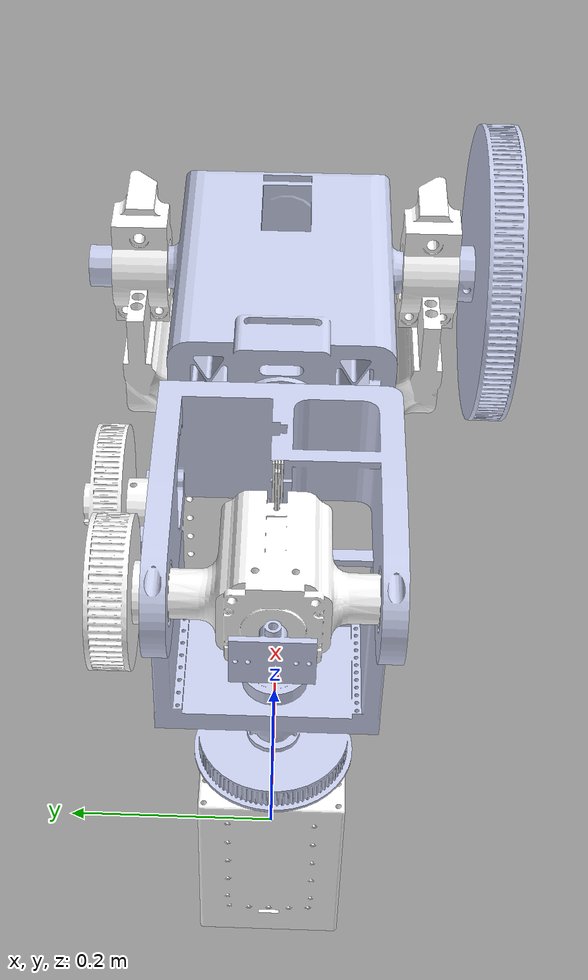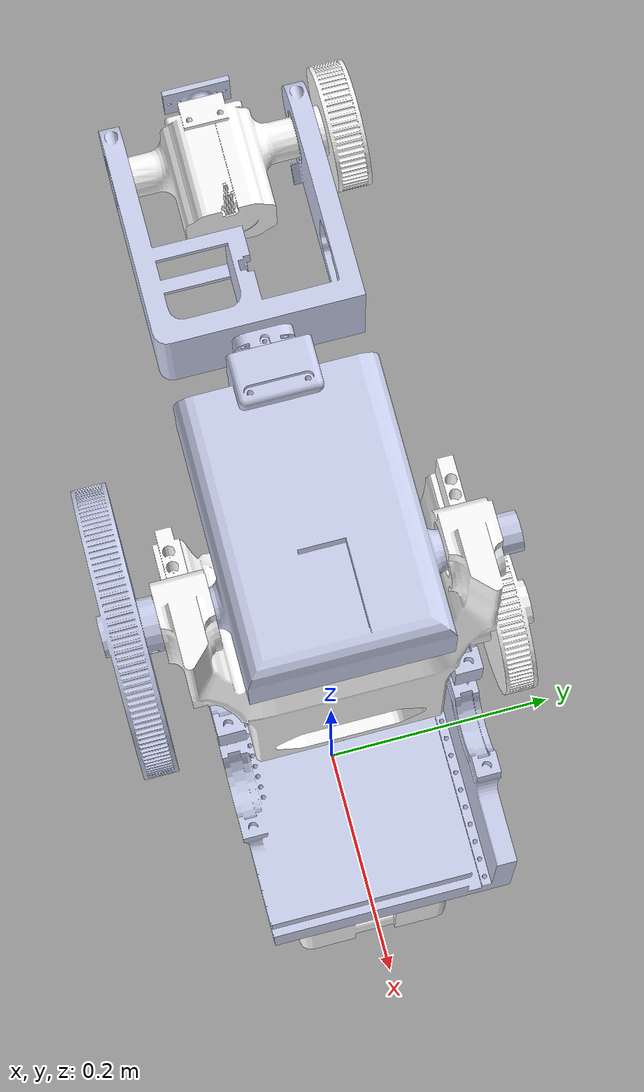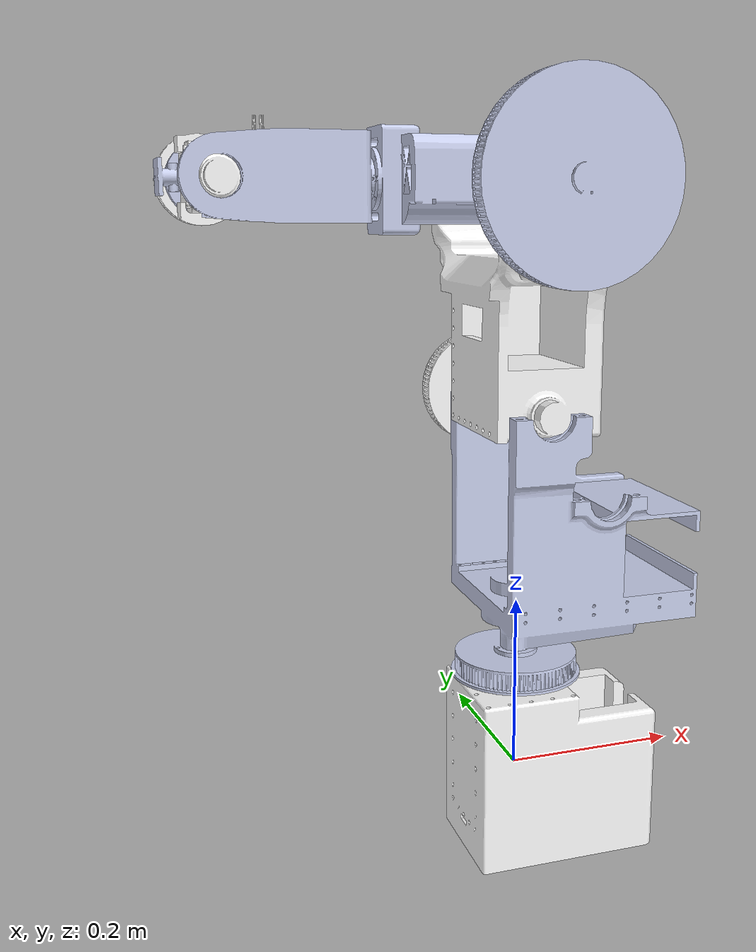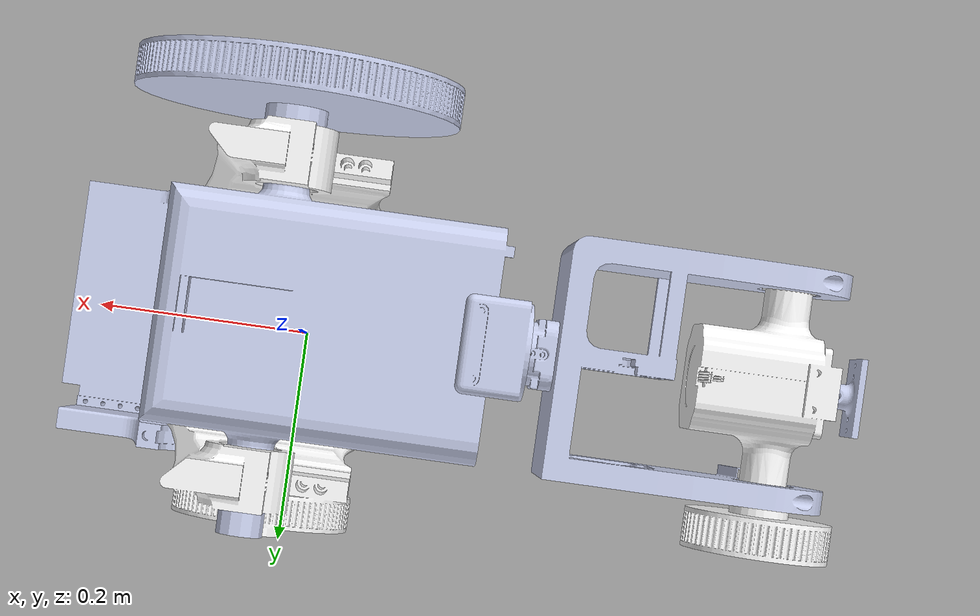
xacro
<?xml version="1.0"?>
<robot xmlns:xacro="http://www.ros.org/wiki/xacro" name="ra6a">
    <xacro:arg name="initial_positions_file" default="initial_positions.yaml" />

    <!-- Import ra6a urdf file -->
    <xacro:include filename="$(find ra6a)/urdf/ra6a.urdf" />

    <!-- Import control_xacro -->
    <xacro:include filename="ra6a.ros2_control.xacro" />

    <xacro:ra6a_ros2_control name="FakeSystem" initial_positions_file="$(arg initial_positions_file)"/>

</robot>

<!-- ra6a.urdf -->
<robot
  name="ra6a">
  <link
    name="base_link">
    <inertial>
      <origin
        xyz="0.039204 -6.6862E-07 -0.010842"
        rpy="0 0 0" />
      <mass
        value="2.915" />
      <inertia
        ixx="0.01436"
        ixy="-9.7839E-06"
        ixz="8.8797E-08"
        iyy="0.016743"
        iyz="-8.9882E-08"
        izz="0.017881" />
    </inertial>
    <visual>
      <origin
        xyz="0 0 0"
        rpy="0 0 0" />
      <geometry>
        <mesh
          filename="package://ra6a/meshes/base_link.stl"
          scale="1.0 1.0 1.0"/>
      </geometry>
      <material
        name="">
        <color
          rgba="1 1 1 1" />
      </material>
    </visual>
    <collision>
      <origin
        xyz="0 0 0"
        rpy="0 0 0" />
      <geometry>
        <mesh
          filename="package://ra6a/meshes/base_link.stl"
          scale="1.0 1.0 1.0"/>
      </geometry>
    </collision>
  </link>
  <link
    name="l1">
    <inertial>
      <origin
        xyz="-0.018341 -0.038699 -0.09919"
        rpy="0 0 0" />
      <mass
        value="2.4989" />
      <inertia
        ixx="0.013037"
        ixy="-0.0027249"
        ixz="0.001464"
        iyy="0.010527"
        iyz="0.0022131"
        izz="0.010986" />
    </inertial>
    <visual>
      <origin
        xyz="0 0 0"
        rpy="0 0 0" />
      <geometry>
        <mesh
          filename="package://ra6a/meshes/l1.stl"
          scale="1.0 1.0 1.0"/>
      </geometry>
      <material
        name="">
        <color
          rgba="0.79216 0.81961 0.93333 1" />
      </material>
    </visual>
    <collision>
      <origin
        xyz="0 0 0"
        rpy="0 0 0" />
      <geometry>
        <mesh
          filename="package://ra6a/meshes/l1.stl"
          scale="1.0 1.0 1.0" />
      </geometry>
    </collision>
  </link>
  <joint
    name="j1"
    type="revolute">
    <origin
      xyz="0 0 0.1369"
      rpy="3.1416 0 4.473940413" />
    <parent
      link="base_link" />
    <child
      link="l1" />
    <axis
      xyz="0 0 1" />
    <limit
      lower="-3.0979"
      upper="3.0979"
      effort="55.5"
      velocity="1.05" />
  </joint>
  <link
    name="l2">
    <inertial>
      <origin
        xyz="-0.023045 -0.0039604 -0.089257"
        rpy="0 0 0" />
      <mass
        value="3.5609" />
      <inertia
        ixx="0.021496"
        ixy="0.00028586"
        ixz="0.00088645"
        iyy="0.031862"
        iyz="0.0004388"
        izz="0.017196" />
    </inertial>
    <visual>
      <origin
        xyz="0 0 0"
        rpy="0 0 0" />
      <geometry>
        <mesh
          filename="package://ra6a/meshes/l2.stl"
          scale="1.0 1.0 1.0"/>
      </geometry>
      <material
        name="">
        <color
          rgba="1 1 1 1" />
      </material>
    </visual>
    <collision>
      <origin
        xyz="0 0 0"
        rpy="0 0 0" />
      <geometry>
        <mesh
          filename="package://ra6a/meshes/l2.stl"
          scale="1.0 1.0 1.0"/>
      </geometry>
    </collision>
  </link>
  <joint
    name="j2"
    type="revolute">
    <origin
      xyz="0 0 -0.2922"
      rpy="0 0 -0.23845" />
    <parent
      link="l1" />
    <child
      link="l2" />
    <axis
      xyz="1 0 0" />
    <limit
      lower="-1.30899694"
      upper="1.69296937"
      effort="110"
      velocity="1.05" />
  </joint>
  <link
    name="l3">
    <inertial>
      <origin
        xyz="-0.049486 -0.00089697 0.024"
        rpy="0 0 0" />
      <mass
        value="3.1038" />
      <inertia
        ixx="0.013328"
        ixy="4.3048E-05"
        ixz="-8.438E-05"
        iyy="0.016047"
        iyz="0.00018895"
        izz="0.0094678" />
    </inertial>
    <visual>
      <origin
        xyz="0 0 0"
        rpy="0 0 0" />
      <geometry>
        <mesh
          filename="package://ra6a/meshes/l3.stl"
          scale="1.0 1.0 1.0"/>
      </geometry>
      <material
        name="">
        <color
          rgba="0.79608 0.82353 0.93725 1" />
      </material>
    </visual>
    <collision>
      <origin
        xyz="0 0 0"
        rpy="0 0 0" />
      <geometry>
        <mesh
          filename="package://ra6a/meshes/l3.stl"
          scale="1.0 1.0 1.0"/>
      </geometry>
    </collision>
  </link>
  <joint
    name="j3"
    type="revolute">
    <origin
      xyz="0 0 -0.23789"
      rpy="1.5708 0 -3.1416" />
    <parent
      link="l2" />
    <child
      link="l3" />
    <axis
      xyz="1 0 0" />
    <limit
      lower="-0.4363323"
      upper="3.577925"
      effort="65"
      velocity="1.05" />
  </joint>
  <link
    name="l4">
    <inertial>
      <origin
        xyz="-0.00644648015582011 0.00019408303741475 0.0542634295034519"
        rpy="0 0 0" />
      <mass
        value="0.72283" />
      <inertia
        ixx="0.0016231"
        ixy="-3.7592E-06"
        ixz="-1.0915E-05"
        iyy="0.0031796"
        iyz="-1.091E-06"
        izz="0.0024777" />
    </inertial>
    <visual>
      <origin
        xyz="0 0 0"
        rpy="0 0 0" />
      <geometry>
        <mesh
          filename="package://ra6a/meshes/l4.stl"
          scale="1.0 1.0 1.0"/>
      </geometry>
      <material
        name="">
        <color
          rgba="0.79608 0.82353 0.93725 1" />
      </material>
    </visual>
    <collision>
      <origin
        xyz="0 0 0"
        rpy="0 0 0" />
      <geometry>
        <mesh
          filename="package://ra6a/meshes/l4.stl"
          scale="1.0 1.0 1.0"/>
      </geometry>
    </collision>
  </link>
  <joint
    name="j4"
    type="revolute">
    <origin
      xyz="5.5E-05 -0.0016053 0.1825"
      rpy="0 0 0" />
    <parent
      link="l3" />
    <child
      link="l4" />
    <axis
      xyz="0 0 1" />
    <limit
      lower="-3.0979"
      upper="3.0979"
      effort="20"
      velocity="1.05" />
  </joint>
  <link
    name="l5">
    <inertial>
      <origin
        xyz="0.033993520449142 0.000239344637752714 -0.0069745494687703"
        rpy="0 0 0" />
      <mass
        value="0.59888" />
      <inertia
        ixx="0.00051226"
        ixy="5.4361E-07"
        ixz="-2.0014E-05"
        iyy="0.00074482"
        iyz="-1.971E-07"
        izz="0.00065835" />
    </inertial>
    <visual>
      <origin
        xyz="0 0 0"
        rpy="0 0 0" />
      <geometry>
        <mesh
          filename="package://ra6a/meshes/l5.stl"
          scale="1.0 1.0 1.0"/>
      </geometry>
      <material
        name="">
        <color
          rgba="1 1 1 1" />
      </material>
    </visual>
    <collision>
      <origin
        xyz="0 0 0"
        rpy="0 0 0" />
      <geometry>
        <mesh
          filename="package://ra6a/meshes/l5.stl"
          scale="1.0 1.0 1.0"/>
      </geometry>
    </collision>
  </link>
  <joint
    name="j5"
    type="revolute">
    <origin
      xyz="0 0 0.1435"
      rpy="0 0 0" />
    <parent
      link="l4" />
    <child
      link="l5" />
    <axis
      xyz="1 0 0" />
    <limit
      lower="-1.5708"
      upper="1.5708"
      effort="7"
      velocity="1.05" />
  </joint>
  <link
    name="end_effector">
    <inertial>
      <origin
        xyz="1.08576461155252E-08 3.29977418729588E-06 -0.00208152036490139"
        rpy="0 0 0" />
      <mass
        value="0.010728" />
      <inertia
        ixx="1.2754E-06"
        ixy="-6.705E-13"
        ixz="-1.0633E-12"
        iyy="1.9358E-06"
        iyz="-1.5271E-10"
        izz="2.32E-06" />
    </inertial>
    <visual>
      <origin
        xyz="0 0 0"
        rpy="0 0 0" />
      <geometry>
        <mesh
          filename="package://ra6a/meshes/end_effector.stl"
          scale="1.0 1.0 1.0"/>
      </geometry>
      <material
        name="">
        <color
          rgba="0.79216 0.81961 0.93333 1" />
      </material>
    </visual>
    <collision>
      <origin
        xyz="0 0 0"
        rpy="0 0 0" />
      <geometry>
        <mesh
          filename="package://ra6a/meshes/end_effector.stl"
          scale="1.0 1.0 1.0"/>
      </geometry>
    </collision>
  </link>
  <joint
    name="j6"
    type="revolute">
    <origin
      xyz="0 0 0.048"
      rpy="0 0 0" />
    <parent
      link="l5" />
    <child
      link="end_effector" />
    <axis
      xyz="0 0 1" />
    <limit
      lower="-3.0979"
      upper="3.0979"
      effort="1.8"
      velocity="1.05" />
  </joint>

  <!-- ROS2_CONTROL CONFIGURATION                 -->
  <!-- Updated to support fake and real modes     -->
  <ros2_control name="ra6a_system" type="system">
    <hardware>
      <plugin>ra6a_hardware/Ra6aSystem</plugin>

      <!-- Hardware mode: "fake" for simulation, "real" for STM32 -->
      <param name="mode">real</param>

      <!-- Serial port settings (only used when mode="real") -->
      <param name="serial_port">/dev/ttyACM0</param>
      <param name="baud_rate">115200</param>
    </hardware>

    <!-- Joint 1 -->
    <joint name="j1">
<command_interface name="position"/>

<state_interface name="position"/>
<state_interface name="velocity"/>

    </joint>

    <!-- Joint 2 -->
    <joint name="j2">
 <command_interface name="position"/>

<state_interface name="position"/>
<state_interface name="velocity"/>

    </joint>

    <!-- Joint 3 -->
    <joint name="j3">
 <command_interface name="position"/>

<state_interface name="position"/>
<state_interface name="velocity"/>

    </joint>

    <!-- Joint 4 -->
    <joint name="j4">
 <command_interface name="position"/>

<state_interface name="position"/>
<state_interface name="velocity"/>

    </joint>

    <!-- Joint 5 -->
    <joint name="j5">
   <command_interface name="position"/>

<state_interface name="position"/>
<state_interface name="velocity"/>

    </joint>

    <!-- Joint 6 -->
    <joint name="j6">
      <command_interface name="position"/>

<state_interface name="position"/>
<state_interface name="velocity"/>

    </joint>

  </ros2_control>

</robot>
